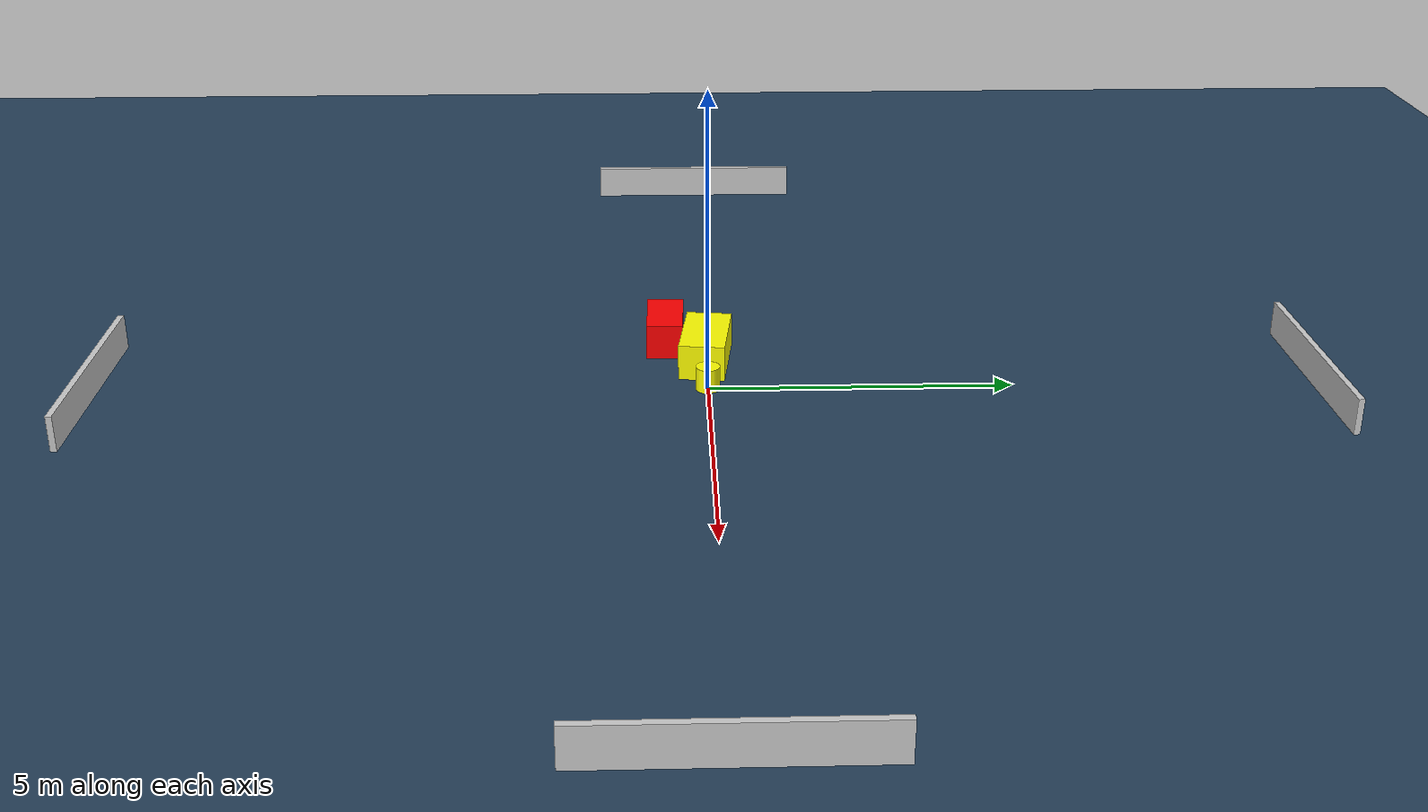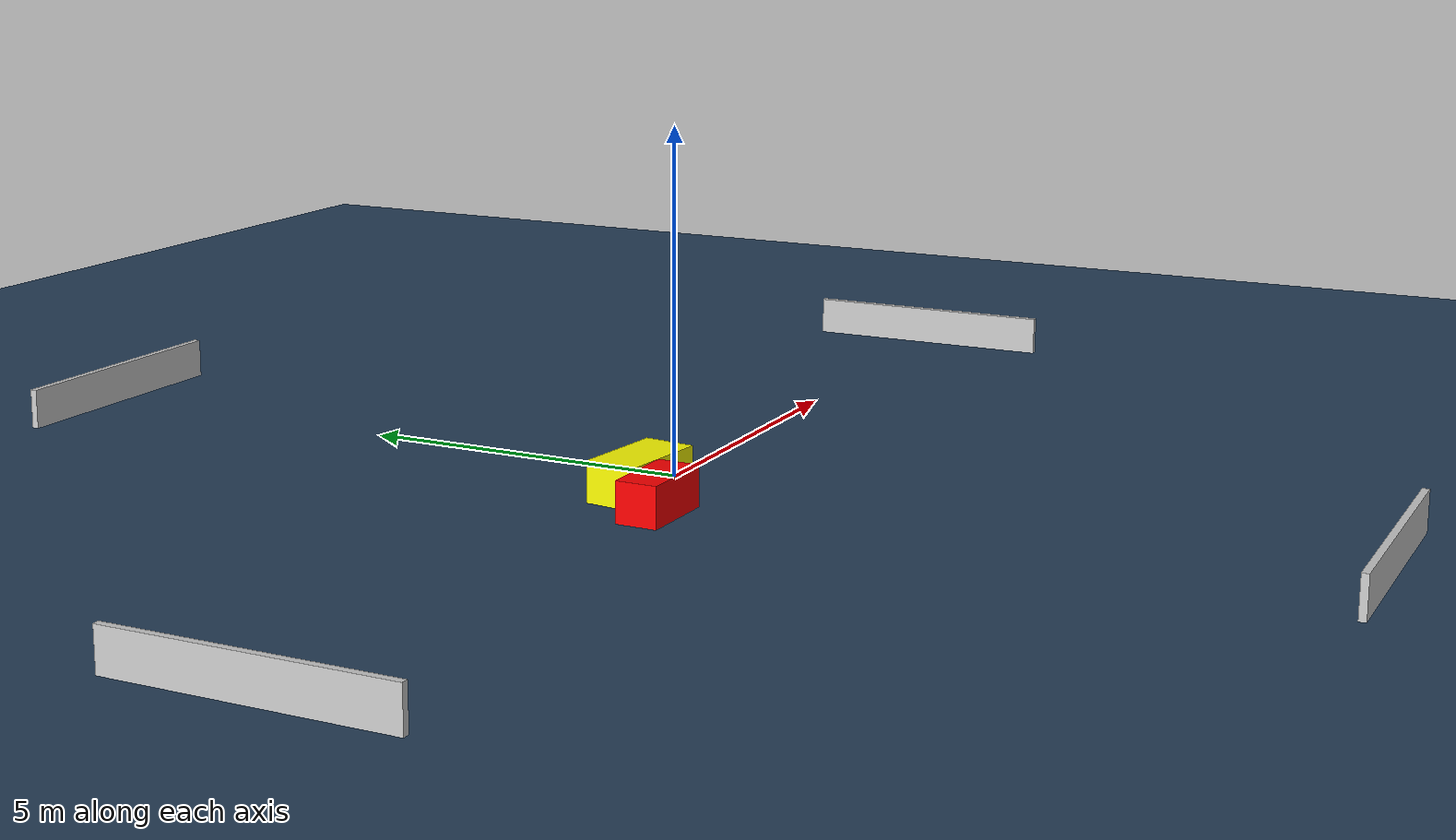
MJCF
<?xml version="1.0" ?>
<mujoco model="generated_environment">
  <option timestep="0.01" integrator="RK4" cone="elliptic"/>
  <default>
    <geom density="1"/>
  </default>
  <asset>
    <texture builtin="gradient" height="3072" name="skybox" rgb1="0.3 0.5 0.7" rgb2="0 0 0" type="skybox" width="512"/>
    <texture builtin="checker" height="300" name="groundplane" rgb1="0.2 0.3 0.4" rgb2="0.1 0.2 0.3" type="2d" width="300"/>
    <material name="groundplane" reflectance="0.2" texrepeat="5 5" texture="groundplane"/>
  </asset>
  <worldbody>
    <light dir="0 0 -1" directional="true" pos="0 0 1.5"/>
    <geom condim="3" friction="0.5 0.005 0.001" material="groundplane" name="floor" pos="0 0 0" size="0 0 0.05" type="plane"/>
    <body name="walls">
      <geom name="wall_1" condim="4" pos="-10.0 0.0 0.3" rgba="0.800000011920929 0.800000011920929 0.800000011920929 1.0" size="0.05 2.0 0.3" type="box"/>
      <geom name="wall_2" condim="4" pos="10.0 0.0 0.3" rgba="0.800000011920929 0.800000011920929 0.800000011920929 1.0" size="0.05 2.0 0.3" type="box"/>
      <geom name="wall_3" condim="4" pos="0.0 -10.0 0.3" rgba="0.800000011920929 0.800000011920929 0.800000011920929 1.0" size="2.0 0.05 0.3" type="box"/>
      <geom name="wall_4" condim="4" pos="0.0 10.0 0.3" rgba="0.800000011920929 0.800000011920929 0.800000011920929 1.0" size="2.0 0.05 0.3" type="box"/>
    </body>
    <body name="robot">
      <joint name="joint_x" type="slide" pos="0 0 0" axis="1 0 0"/>
      <joint name="joint_y" type="slide" pos="0 0 0" axis="0 1 0"/>
      <geom name="robot" type="cylinder" pos="0.0 0.0 0.2" size="0.2 0.2 0.0" mass="5.0" friction="1.0 0.005 0.0001" condim="4" rgba="1.0 1.0 0.0 1.0"/>
    </body>
    <body name="obstacle_1_movable">
      <geom name="obstacle_1_movable" condim="4" pos="-1.0674304125367586 -0.009619585726209579 0.3" euler="0 0 263.2125168083644" friction="0.0 0.005 0.001" rgba="1.0 1.0 0.0 1.0" size="0.38398481518122773 0.7382365093001018 0.3" type="box" mass="0.1"/>
      <joint type="free"/>
    </body>
    <body name="obstacle_2_static">
      <geom name="obstacle_2_static" condim="4" pos="-1.8488760554616372 -0.6833816490642778 0.3" euler="0 0 358.89019778503314" friction="0.0 0.005 0.001" rgba="1.0 0.0 0.0 1.0" size="0.6089713742456239 0.3070887460723644 0.3" type="box"/>
    </body>
  </worldbody>
  <actuator>
    <motor name="actuator_x" joint="joint_x" gear="1" ctrlrange="-1 1"/>
    <motor name="actuator_y" joint="joint_y" gear="1" ctrlrange="-1 1"/>
  </actuator>
</mujoco>
